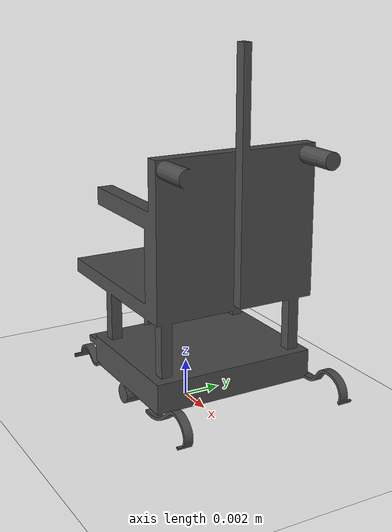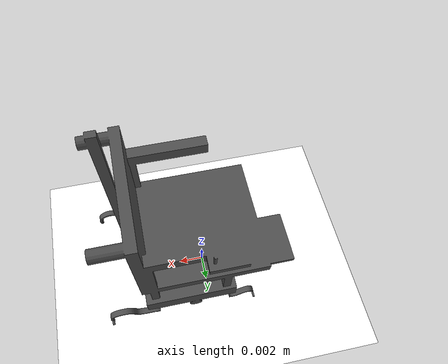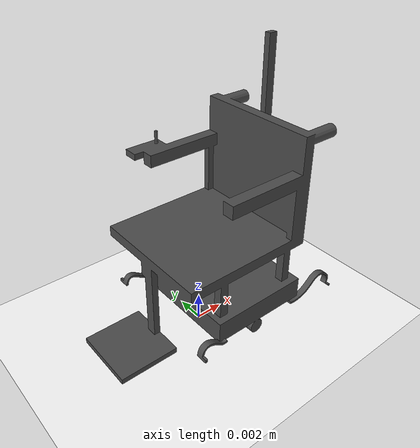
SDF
<?xml version="1.0" ?>
<sdf version='1.8'>
  <world name='course_straight_world'>

    <physics name="1ms" type="ignored">
      <max_step_size>0.001</max_step_size>
      <real_time_factor>0.5</real_time_factor>
    </physics>

    <plugin filename="gz-sim-physics-system" name="gz::sim::systems::Physics"></plugin>
    <plugin filename="gz-sim-user-commands-system" name="gz::sim::systems::UserCommands"></plugin>
    <plugin filename="gz-sim-scene-broadcaster-system" name="gz::sim::systems::SceneBroadcaster"></plugin>

    <scene>
      <ambient>0.6 0.6 0.6 1</ambient>
      <background>0.8 0.8 0.8 1</background>
      <shadows>0</shadows> </scene>

    <light type="directional" name="sun">
      <cast_shadows>false</cast_shadows>
      <pose>0 0 10 0 0 0</pose>
      <diffuse>0.8 0.8 0.8 1</diffuse>
      <specular>0.2 0.2 0.2 1</specular>
      <direction>-0.5 0.1 -0.9</direction>
    </light>

    <light type="point" name="ceiling_light">
      <pose>0 0 3 0 0 0</pose> <diffuse>1 1 1 1</diffuse>
      <specular>0.5 0.5 0.5 1</specular>
      <attenuation>
        <range>20</range>
        <constant>0.5</constant>
        <linear>0.01</linear>
        <quadratic>0.001</quadratic>
      </attenuation>
      <cast_shadows>false</cast_shadows>
    </light>

    <model name='ground_plane'>
      <static>true</static>
      <link name='link'>
        <collision name='collision'>
          <geometry><plane><normal>0 0 1</normal><size>20 20</size></plane></geometry>
        </collision>
        <visual name='visual'>
          <pose>0 1.0287 0 0 0 0</pose>
          <geometry><plane><normal>0 0 1</normal><size>0.0573 2.0574</size></plane></geometry>
          <material>
            <ambient>1 1 1 1</ambient>
            <diffuse>1 1 1 1</diffuse>
            <pbr>
              <metal>
                <albedo_map>models/course_grounds/materials/textures/straightlinecourse.png</albedo_map>
              </metal>
            </pbr>
          </material>
        </visual>
      </link>
    </model>

    <include>
          <uri>wheelchair/wheelchair.sdf</uri>
          <name>my_wheelchair</name>
          <pose>0 0 0 0 0 3.1415926</pose>  <!-- rotate by 180 degrees so the wheelchair spawns already facing the course -->
    </include>
  </world>
</sdf>

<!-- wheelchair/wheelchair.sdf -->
<sdf version="1.8">
  <model name='mwheelchair'>
    <pose>0 0 0.05 0 0 0</pose>

    <link name='chassis'>
      <inertial>
        <mass>10.0</mass>
        <inertia>
          <ixx>1.0</ixx><iyy>1.0</iyy><izz>1.0</izz>
        </inertia>
      </inertial>

      <visual name='visual'>
        <geometry>
          <mesh>
            <uri>model://wheelchair/meshes/wheelchair.stl</uri>
            <scale>0.015 0.015 0.015</scale>
          </mesh>
        </geometry>
        <material>
          <ambient>0.3 0.3 0.3 1</ambient>
          <diffuse>0.3 0.3 0.3 1</diffuse>
        </material>
      </visual>

      <collision name='collision'>
        <pose>0 0 0 0 0 0</pose>
        <geometry>
          <box>
            <size>0.8 0.6 0.8</size>
          </box>
        </geometry>
        <surface>
          <friction>
            <ode><mu>0.0</mu><mu2>0.0</mu2></ode>
          </friction>
        </surface>
      </collision>
    </link>

    <plugin
      filename="libignition-gazebo-odometry-publisher-system"
      name="ignition::gazebo::systems::OdometryPublisher">
      <odom_frame>odom</odom_frame>
      <robot_base_frame>chassis</robot_base_frame>
      <publish_odom_tf>true</publish_odom_tf>
    </plugin>

    <plugin
      filename="libignition-gazebo-velocity-control-system.so"
      name="ignition::gazebo::systems::VelocityControl">
      <topic>cmd_vel</topic>
    </plugin>

  </model>
</sdf>
